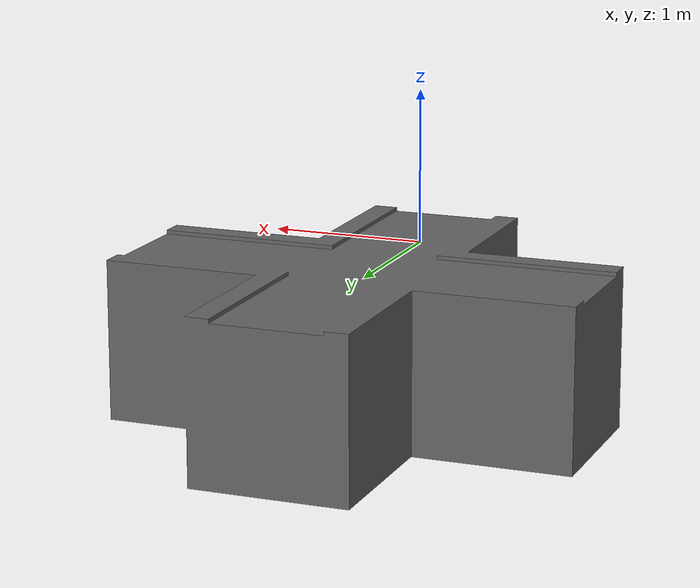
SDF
<?xml version="1.0" ?>
<sdf version="1.4">
  <model name="MascorCity_Street_Junction">
    <static>true</static>
    <link name="street_link">
      <pose>0 0 -0.43 1.5708 0 0</pose>
      <collision name="street_colision">
        <geometry>
         <mesh>
            <uri>model://mascor_city_street_junction/meshes/mascor_city_street_junction.dae</uri>
            <scale>1 1 1</scale>
          </mesh>
        </geometry>
      </collision>
      <visual name="street_visual">
        <geometry>
          <mesh>
            <uri>model://mascor_city_street_junction/meshes/mascor_city_street_junction.dae</uri>
            <scale>1 1 1</scale>
          </mesh>
        </geometry>
      </visual>
    </link>
  </model>
</sdf>
